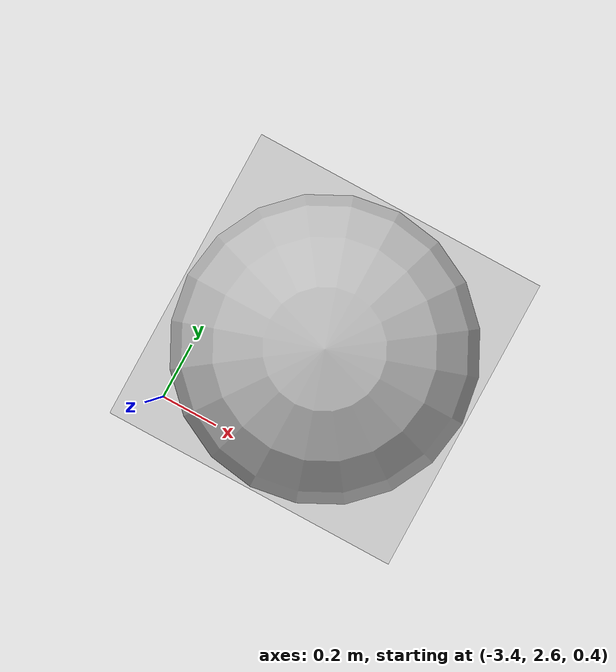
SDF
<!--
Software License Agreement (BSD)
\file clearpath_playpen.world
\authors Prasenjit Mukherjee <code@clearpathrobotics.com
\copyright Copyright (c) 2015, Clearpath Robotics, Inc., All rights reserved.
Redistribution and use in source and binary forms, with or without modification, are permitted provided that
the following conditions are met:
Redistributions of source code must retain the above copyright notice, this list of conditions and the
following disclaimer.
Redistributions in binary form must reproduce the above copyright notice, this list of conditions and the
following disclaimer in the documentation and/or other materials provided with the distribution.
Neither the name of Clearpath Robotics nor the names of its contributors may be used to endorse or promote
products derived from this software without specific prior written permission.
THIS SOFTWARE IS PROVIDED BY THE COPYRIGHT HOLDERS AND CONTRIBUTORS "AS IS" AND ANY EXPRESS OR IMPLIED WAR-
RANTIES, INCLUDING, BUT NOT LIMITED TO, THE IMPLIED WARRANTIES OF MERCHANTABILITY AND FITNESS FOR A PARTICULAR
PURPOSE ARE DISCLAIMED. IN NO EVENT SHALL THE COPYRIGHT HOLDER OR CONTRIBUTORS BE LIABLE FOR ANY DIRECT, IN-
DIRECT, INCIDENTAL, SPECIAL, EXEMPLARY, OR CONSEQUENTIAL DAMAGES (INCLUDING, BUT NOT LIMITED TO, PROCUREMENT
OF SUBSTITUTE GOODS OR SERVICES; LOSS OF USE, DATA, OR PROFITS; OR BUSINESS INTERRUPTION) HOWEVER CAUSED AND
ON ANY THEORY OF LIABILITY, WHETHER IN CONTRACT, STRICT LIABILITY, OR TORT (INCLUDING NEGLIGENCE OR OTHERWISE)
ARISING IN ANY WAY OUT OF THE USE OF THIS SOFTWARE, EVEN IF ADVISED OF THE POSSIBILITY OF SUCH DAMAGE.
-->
<?xml version="1.0"?>
<sdf version='1.4'>
  <world name='default'>
    <light name='sun' type='directional'>
      <cast_shadows>1</cast_shadows>
      <pose>0 0 10 0 -0 0</pose>
      <diffuse>0.8 0.8 0.8 1</diffuse>
      <specular>0.2 0.2 0.2 1</specular>
      <attenuation>
        <range>1000</range>
        <constant>0.9</constant>
        <linear>0.01</linear>
        <quadratic>0.001</quadratic>
      </attenuation>
      <direction>-0.5 0.1 -0.9</direction>
    </light>
    <model name="My Ball2">
      <pose>-3 3 0.8 0 0 0</pose>
      <link name="link">
        <collision name="collision">
          <geometry>
            <sphere>
              <radius>0.4</radius>
            </sphere>
          </geometry>
        </collision>
        <visual name="visual">
          <geometry>
            <sphere>
              <radius>0.4</radius>
            </sphere>
          </geometry>
        </visual>
      </link>
      <plugin name="model_push" filename="libmodel_push.so"/>
    </model>

    <model name='ground_plane'>
      <static>1</static>
      <link name='link'>
        <collision name='collision'>
          <geometry>
            <plane>
              <normal>0 0 1</normal>
              <size>100 100</size>
            </plane>
          </geometry>
          <surface>
            <friction>
              <ode>
                <mu>100</mu>
                <mu2>50</mu2>
              </ode>
            </friction>
            <bounce/>
            <contact>
              <ode/>
            </contact>
          </surface>
          <max_contacts>10</max_contacts>
        </collision>
        <visual name='visual'>
          <cast_shadows>0</cast_shadows>
          <geometry>
            <plane>
              <normal>0 0 1</normal>
              <size>100 100</size>
            </plane>
          </geometry>
          <material>
            <script>
              <uri>file://media/materials/scripts/gazebo.material</uri>
              <name>Gazebo/Grey</name>
            </script>
          </material>
        </visual>
        <velocity_decay>
          <linear>0</linear>
          <angular>0</angular>
        </velocity_decay>
        <self_collide>0</self_collide>
        <kinematic>0</kinematic>
        <gravity>1</gravity>
      </link>
    </model>

    <physics type='ode'>
      <max_step_size>0.01</max_step_size>
      <real_time_factor>1</real_time_factor>
      <real_time_update_rate>100</real_time_update_rate>
      <gravity>0 0 -9.8</gravity>
    </physics>
    <scene>
      <ambient>0.4 0.4 0.4 1</ambient>
      <background>0.7 0.7 0.7 1</background>
      <shadows>1</shadows>
    </scene>

    <gui fullscreen='0'>
      <camera name='user_camera'>
        <pose>16.2337 1.23674 17.6497 0 0.923643 -3.08299</pose>
        <view_controller>orbit</view_controller>
      </camera>
    </gui>
  </world>
</sdf>
